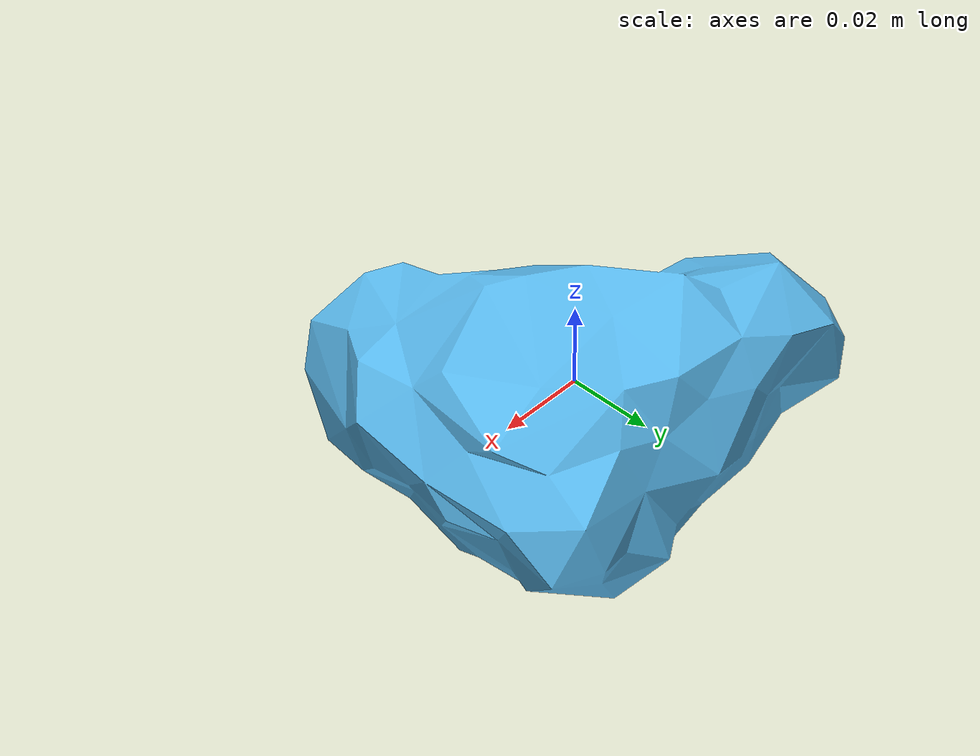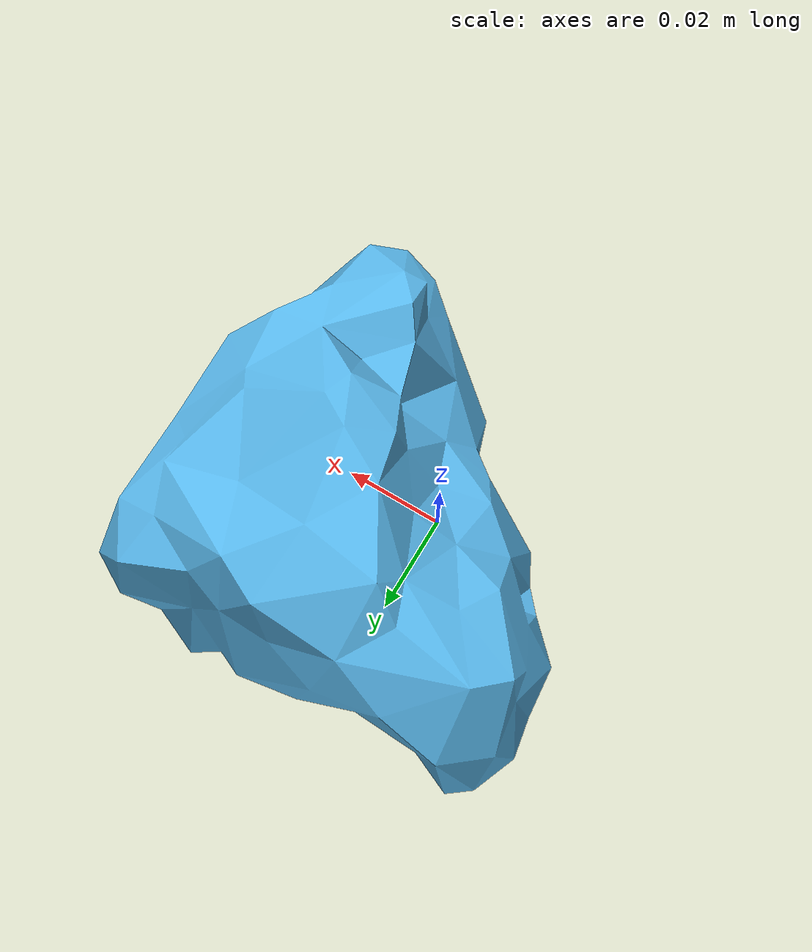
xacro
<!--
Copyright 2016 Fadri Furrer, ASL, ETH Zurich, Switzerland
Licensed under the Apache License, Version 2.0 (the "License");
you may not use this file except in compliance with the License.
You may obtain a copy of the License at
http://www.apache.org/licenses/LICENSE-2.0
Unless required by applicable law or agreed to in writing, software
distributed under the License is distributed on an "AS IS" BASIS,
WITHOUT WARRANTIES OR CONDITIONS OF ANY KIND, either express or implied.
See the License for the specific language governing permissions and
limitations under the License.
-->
<?xml version="1.0"?>

<robot name="old_stone_2" xmlns:xacro="http://ros.org/wiki/xacro">
  <xacro:property name="mesh_file" value="package://urdf_models/meshes/old_stone_2.stl" />
  <xacro:property name="mass" value="1" />
  <link name="base_link"></link>

  <joint name="base_joint" type="fixed">
    <origin xyz="0 0 0" rpy="0 0 0" />
    <parent link="base_link" />
    <child link="base_link_inertia" />
  </joint>
  <link name="base_link_inertia">
      <inertial>
        <mass value="${mass}" />  <!-- [kg] -->
        <origin xyz=" 0.013790 0.01182984 0.01066468" />
        <inertia ixx="0.010016e-02" ixy="0.002271e-02" 		ixz="0.00011519e-02"
                			      	      iyy="0.01044e-02"  	iyz="-0.00041764e-02"
                 								    		                  izz="0.01421e-02" />
      <!--
Center of Mass is 0.013790 0.011830 0.010533
| 1001.556152 227.168915 11.519399 |
| 227.168915 1044.748047 -41.764668 |
| 11.519399 -41.764668 1421.030762 |
-->

        </inertial>

      <visual>
        <origin xyz="0 0 0" rpy="0 0 0" />
        <geometry>
          <mesh filename="${mesh_file}" scale="1 1 1" />
        </geometry>
      </visual>

      <collision>
        <origin xyz="0 0 0" rpy="0 0 0" />
        <geometry>
          <mesh filename="${mesh_file}" scale="1 1 1" />
        </geometry>
      </collision>
  </link>

  <gazebo reference="base_link">
      <mu1 value="1.2"/>
      <mu2 value="1.1"/>
      <kp  value="5000000.0" />
      <kd  value="1.0" />
      <fdir1 value="1 0 0"/>
      <collision>
	        <surface>
	          <bounce>
	            <restitution_coefficient> 0.1 </restitution_coefficient>
	            <threshold>0.</threshold>
	          </bounce>
		      <contact>
		          <ode>
		            <max_vel>0.1</max_vel>
		            <min_depth>0.001</min_depth>
		          </ode>
		      </contact>
	        </surface>
	   </collision>
      <material name="Gray">
	    <color rgba="0.8 0.8 0.8 1"/>
	  </material>
      <turnGravityOff>false</turnGravityOff>
  </gazebo>

</robot>
